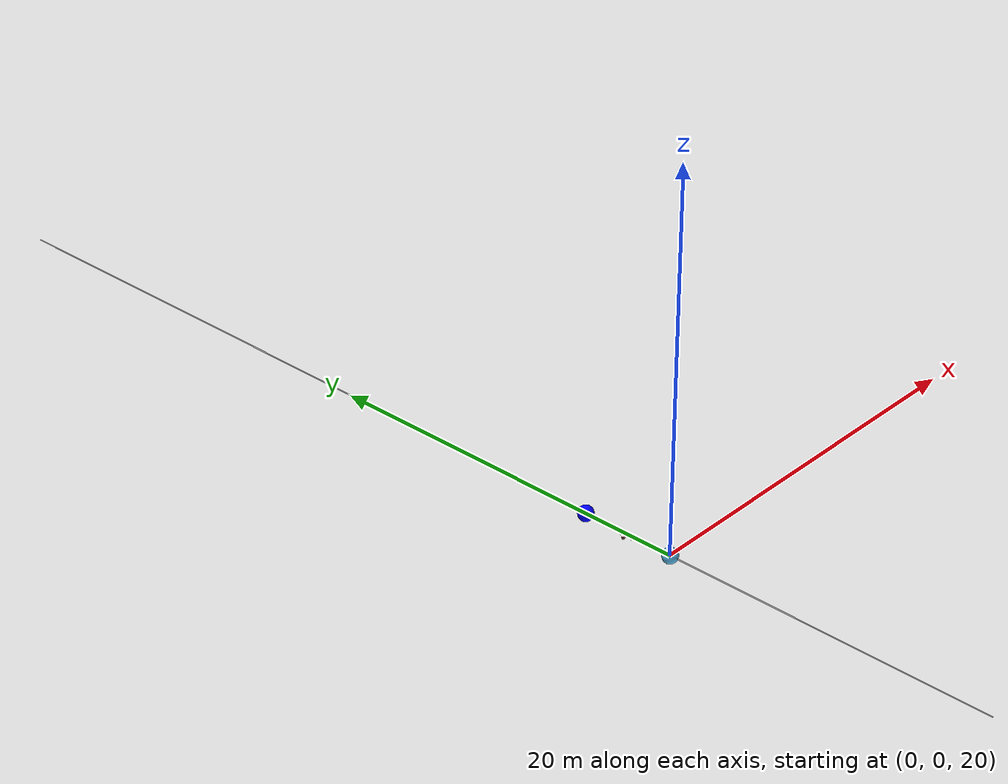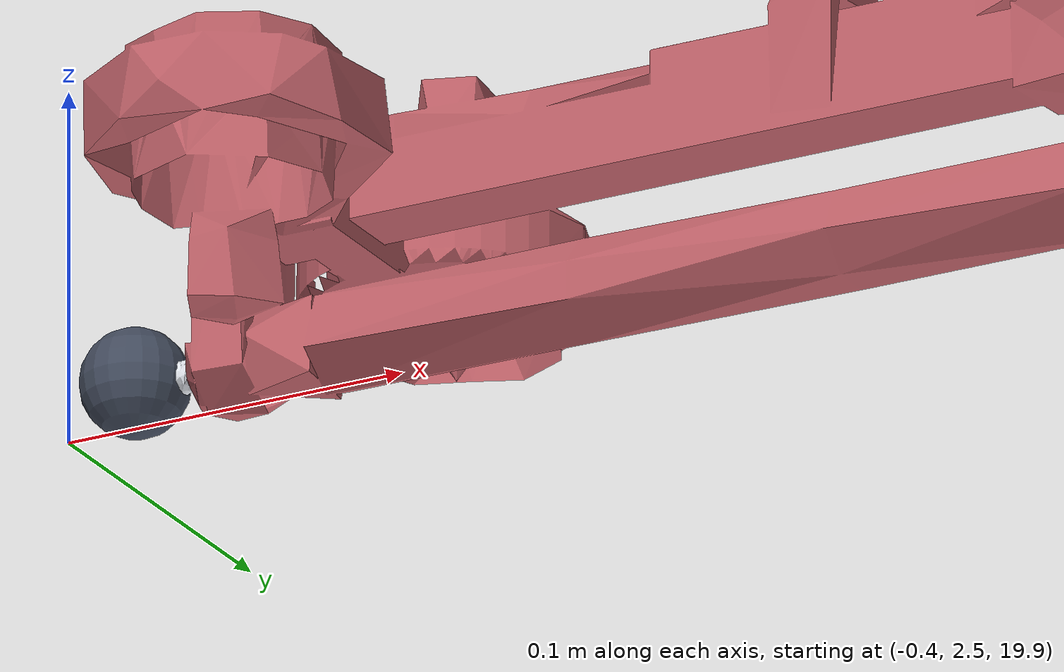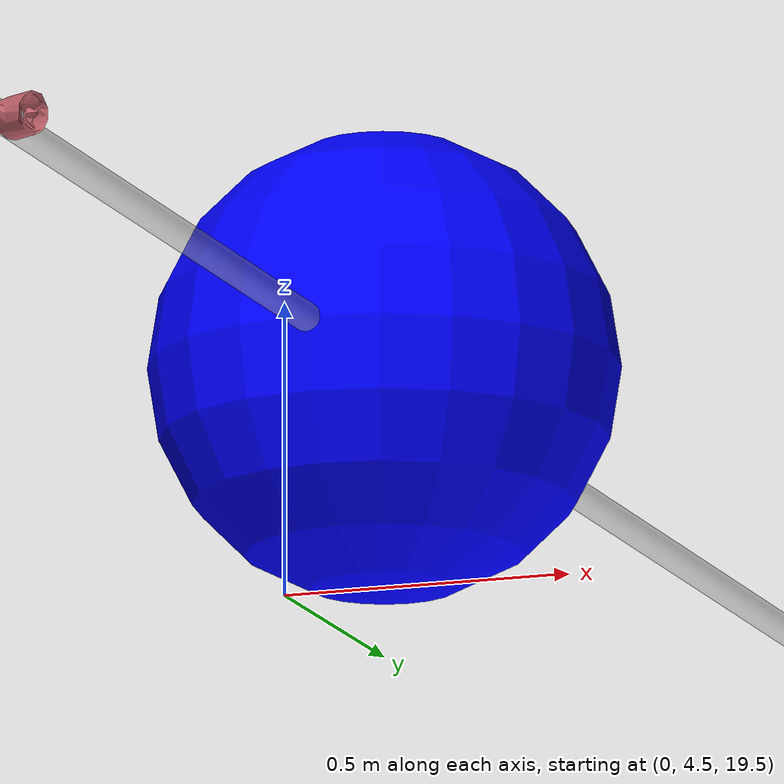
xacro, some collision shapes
<?xml version="1.0" ?>
<robot name="climbingrobot2" xmlns:xacro="http://ros.org/wiki/xacro">
  <!-- This file is based on: https://atlas.is.localnet/confluence/display/AMDW/Quadruped+URDF+Files -->

    <!--- new_gazebo_version should be false by default because pinocchio needs it!-->
    <xacro:arg name="robot_name" default="climbingrobot2"/>
    <xacro:arg name="new_gazebo_version" default="false"/>

   <xacro:arg name="anchorX" default="0."/>
   <xacro:arg name="anchorY" default="0."/>
   <xacro:arg name="anchorZ" default="20."/>

   <xacro:arg name="anchor2X" default="0."/>
   <xacro:arg name="anchor2Y" default="5."/>
   <xacro:arg name="anchor2Z" default="20."/>

   <xacro:arg name="hoist_distance" default="0.1"/>
   <xacro:arg name="hoist_base_distanceZ" default="0.05"/>

   <xacro:arg name="double_propeller" default="false"/>

    <xacro:include filename="$(find climbingrobot_description)/gazebo/gazebo.urdf.xacro">
        <xacro:arg name="task_period" value="$(arg task_period)"/>
	<xacro:arg name="robot_name" value="$(arg robot_name)"/>
    </xacro:include>

    <xacro:include filename="$(find climbingrobot_description)/urdf/climbingrobot2.transmission_real.xacro"/>

 <material name="Blue">
    <color rgba="${0/255} ${0/255} ${255/255} 1.0"/>
  </material>

    <link name="world"/>

 <!-- Anchor 1 link-->

   <joint name="anchor1_position" type="fixed">
        <origin rpy="0 0 0" xyz="$(arg anchorX) $(arg anchorY) $(arg anchorZ)"/>
        <parent link="world"/>
        <child link="anchor"/>
    </joint>

    <link name="anchor">
    <visual>
	<geometry>
         <sphere radius="0.4" />
	</geometry>
    </visual>

    <inertial>
      <origin rpy="0 0 0" xyz="0 0 0.0"/>
      <mass value="0.01"/>
      <inertia ixx="0.01" ixy="0.0" ixz="0.0" iyy="0.01" iyz="0.0" izz="0.01"/>
    </inertial>
  </link>

  <!-- Revolute pitch joint between the anchor1 and the wire -->
  <joint name="mountain_wire_pitch_l" type="revolute">
    <parent link="anchor"/>
    <child link="pre_wire1"/>
    <limit effort="1000" velocity="100.0" lower="-100" upper="100"/>
    <!-- joint rotates about -y axis -->
    <axis xyz="0 -1 0"/>
    <origin rpy="0 0 0" xyz="0.0 0.0 0.0"/>
    <!-- pybullet simulation parameters -->
    <dynamics damping="0.0" friction="0.0"/>
  </joint>

  <link name="pre_wire1">
    <visual>
      <origin rpy="0 0 0" xyz="0 0 0"/>
      <geometry>
        <mesh filename="package://climbingrobot_description/meshes/obj/cylinder.obj" scale="0.01 0.01 0.01"/>
      </geometry>
      <material name="grey">
        <color rgba=".7 .7 .7 .5"/>
      </material>
    </visual>
    <collision>
      <origin rpy="0 0 0" xyz="0 0 0.0"/>
      <geometry>
        <cylinder length="0.01" radius="0.01"/>
      </geometry>
    </collision>
    <inertial>
      <origin rpy="0 0 0" xyz="0 0 0.0"/>
      <mass value="0.01"/>
      <inertia ixx="0.0001" ixy="0.0" ixz="0.0" iyy="0.0001" iyz="0.0" izz="0.0001"/>
    </inertial>
  </link>

  <!-- Revolute roll joint between the mountain and the wire -->
  <joint name="mountain_wire_roll_l" type="revolute">
    <parent link="pre_wire1"/>
    <child link="wire"/>
    <limit effort="1000" velocity="100.0" lower="-100" upper="100"/>
    <!-- joint rotates about x axis -->
    <axis xyz="1 0 0"/>
    <origin rpy="1.57 0 0" xyz="0.0 0.0 0.0"/>
    <!-- pybullet simulation parameters -->
    <dynamics damping="0.0" friction="0.0"/>
  </joint>

  <link name="wire">
    <inertial>
      <origin rpy="0 0 0" xyz="0 0 0.0"/>
      <mass value="0.01"/>
      <inertia ixx="0.001" ixy="0.0" ixz="0.0" iyy="0.001" iyz="0.0" izz="0.001"/>
    </inertial>
  </link>

  <!-- Prismatic joint between the wire and the base -->
  <joint name="wire_base_prismatic_l" type="prismatic">
    <parent link="wire"/>
    <child link="pre-base1"/>
    <limit effort="1000" velocity="100.0" lower="-100" upper="100"/>
    <!-- joint translates on z axis -->
    <axis xyz="0 0 -1"/>
    <origin rpy="0 0 0" xyz="0.0 0.0 ${$(arg hoist_distance)/2 -$(arg anchor2Y)/2}"/>
    <!-- pybullet simulation parameters -->
    <dynamics damping="0.0" friction="0.0"/>
  </joint>

  <link name="pre-base1">
      <visual>
      <origin rpy="0 0 0" xyz="0 0 ${$(arg anchorZ)/2}"/>
     <geometry>
           <cylinder radius="0.025" length="$(arg anchorZ)"/> <!--this is the rope-->
      </geometry>
 	      <material name="grey">
 	        <color rgba=".7 .7 .7 .5"/>
 	      </material>
     </visual>
    <inertial>
      <origin rpy="0 0 0" xyz="0 0 0.0"/>
      <mass value="0.01"/>
      <inertia ixx="0.0001" ixy="0.0" ixz="0.0" iyy="0.0001" iyz="0.0" izz="0.0001"/>
    </inertial>
  </link>

  <!-- Revolute pitch joint between the wire and the base -->
  <joint name="wire_base_pitch_l" type="revolute">
    <parent link="pre-base1"/>
    <child link="pre-base2"/>
    <limit effort="1000" velocity="100.0" lower="-100" upper="100"/>
    <!-- joint rotates about y axis -->
    <axis xyz="0 1 0"/>
    <origin rpy="0 0 0" xyz="0.0 0.0 0.0"/>
    <!-- pybullet simulation parameters -->
    <dynamics damping="0.0" friction="0.0"/>
  </joint>

  <link name="pre-base2">
     <inertial>
      <origin rpy="0 0 0" xyz="0 0 0.0"/>
      <mass value="0.01"/>
      <inertia ixx="0.0001" ixy="0.0" ixz="0.0" iyy="0.0001" iyz="0.0" izz="0.0001"/>
    </inertial>
  </link>
  <!-- Revolute roll joint between the wire and the base -->
  <joint name="wire_base_roll_l" type="revolute">
    <parent link="pre-base2"/>
    <child link="pre-base3"/>
    <limit effort="1000" velocity="100.0" lower="-100" upper="100"/>
    <!-- joint rotates about x axis -->
    <axis xyz="1 0 0"/>
    <origin rpy="-1.57 0 0" xyz="0.0 0.0 0.0"/>
    <!-- pybullet simulation parameters -->
    <dynamics damping="0.0" friction="0.0"/>
  </joint>

  <link name="pre-base3">
    <inertial>
      <origin rpy="0 0 0" xyz="0 0 0.0"/>
      <mass value="0.01"/>
      <inertia ixx="0.0001" ixy="0.0" ixz="0.0" iyy="0.0001" iyz="0.0" izz="0.0001"/>
    </inertial>
  </link>
  <!-- Revolute yaw joint between the wire and the base -->
  <joint name="wire_base_yaw_l" type="revolute">
    <parent link="pre-base3"/>
    <child link="base_link"/>
    <limit effort="1000" velocity="100.0" lower="-100" upper="100"/>
    <!-- joint rotates about z axis -->
    <axis xyz="0 0 1"/>
    <origin rpy="0 0 0" xyz="0.0 ${$(arg hoist_distance)/2} -$(arg hoist_base_distanceZ)"/>
    <!-- pybullet simulation parameters -->
    <dynamics damping="0.0" friction="0.0"/>
  </joint>

  <!-- Anchor 2   -->

   <joint name="anchor2_position" type="fixed">
        <origin rpy="0 0 0" xyz="0 ${$(arg anchor2Y)-$(arg anchorY)} 0"/>
        <parent link="anchor"/>
        <child link="anchor_2"/>
    </joint>

    <link name="anchor_2">
	    <visual>
		<geometry>
		 <sphere radius="0.4" />
		</geometry>
		<material name="Blue"/><!--rviz"/-->
	    </visual>

	    <inertial>
	      <origin rpy="0 0 0" xyz="0 0 0.0"/>
	      <mass value="0.01"/>
	      <inertia ixx="0.01" ixy="0.0" ixz="0.0" iyy="0.01" iyz="0.0" izz="0.01"/>
	    </inertial>
    </link>

  <!-- Revolute pitch joint between the mountain and the wire -->
  <joint name="mountain_wire_pitch_r" type="revolute">
    <parent link="anchor_2"/>
    <child link="pre_wire1_2"/>
    <limit effort="1000" velocity="100.0" lower="-100" upper="100"/>
    <!-- joint rotates about -y axis -->
    <axis xyz="0 -1 0"/>
    <origin rpy="-${pi/2}  0 0" xyz="0.0 0.0 0.0"/>
    <!-- pybullet simulation parameters -->
    <dynamics damping="0.0" friction="0.0"/>
  </joint>

  <link name="pre_wire1_2">
    <visual>
      <origin rpy="0 0 0" xyz="0 0 0"/>
      <geometry>
        <mesh filename="package://climbingrobot_description/meshes/obj/cylinder.obj" scale="0.01 0.01 0.01"/>
      </geometry>
      <material name="grey">
        <color rgba=".7 .7 .7 .5"/>
      </material>
    </visual>
    <collision>
      <origin rpy="0 0 0" xyz="0 0 0.0"/>
      <geometry>
        <cylinder length="0.01" radius="0.01"/>
      </geometry>
    </collision>
    <inertial>
      <origin rpy="0 0 0" xyz="0 0 0.0"/>
      <mass value="0.01"/>
      <inertia ixx="0.0001" ixy="0.0" ixz="0.0" iyy="0.0001" iyz="0.0" izz="0.0001"/>
    </inertial>
  </link>

  <!-- Revolute roll joint between the mountain and the wire -->
  <joint name="mountain_wire_roll_r" type="revolute">
    <parent link="pre_wire1_2"/>
    <child link="wire_2"/>
    <limit effort="1000" velocity="100.0" lower="-100" upper="100"/>
    <!-- joint rotates about x axis -->
    <axis xyz="1 0 0"/>
    <origin rpy="0 0 0" xyz="0.0 0.0 0.0"/>
    <!-- pybullet simulation parameters -->
    <dynamics damping="0.0" friction="0.0"/>
  </joint>

  <link name="wire_2">
    <inertial>
      <origin rpy="0 0 0" xyz="0 0 0.0"/>
      <mass value="0.01"/>
      <inertia ixx="0.001" ixy="0.0" ixz="0.0" iyy="0.001" iyz="0.0" izz="0.001"/>
    </inertial>
  </link>

  <!-- Prismatic joint between the wire and the base -->
  <joint name="wire_base_prismatic_r" type="prismatic">
    <parent link="wire_2"/>
    <child link="pre-base1_2"/>
    <limit effort="1000" velocity="100.0" lower="-100" upper="100"/>
    <!-- joint translates on x axis -->
    <axis xyz="0 0 -1"/>
    <origin rpy="0 0 0" xyz="0.0 0.0  ${$(arg hoist_distance)/2 -$(arg anchor2Y)/2}"/>
    <!-- pybullet simulation parameters -->
    <dynamics damping="0.0" friction="0.0"/>
  </joint>

  <link name="pre-base1_2">
      <visual>
       	      <origin rpy="0 0 0" xyz="0 0 $(arg anchorZ)"/>
 	      <geometry>
 	        <cylinder radius="0.025" length="${$(arg anchorZ)*2}"/> <!--this is the rope-->
 	      </geometry>
 	      <material name="grey">
 	        <color rgba=".7 .7 .7 .5"/>
 	      </material>
     </visual>
    <inertial>
      <origin rpy="0 0 0" xyz="0 0 0.0"/>
      <mass value="0.01"/>
      <inertia ixx="0.0001" ixy="0.0" ixz="0.0" iyy="0.0001" iyz="0.0" izz="0.0001"/>
    </inertial>
  </link>

  <!-- Revolute pitch joint between the wire and the base -->
  <joint name="wire_base_pitch_r" type="revolute">
    <parent link="pre-base1_2"/>
    <child link="pre-base2_2"/>
    <limit effort="1000" velocity="100.0" lower="-100" upper="100"/>
    <!-- joint rotates about y axis -->
    <axis xyz="0 1 0"/>
    <origin rpy="0 0 0" xyz="0.0 0.0 0.0"/>
    <!-- pybullet simulation parameters -->
    <dynamics damping="0.0" friction="0.0"/>
  </joint>

  <link name="pre-base2_2">
     <inertial>
      <origin rpy="0 0 0" xyz="0 0 0.0"/>
      <mass value="0.01"/>
      <inertia ixx="0.0001" ixy="0.0" ixz="0.0" iyy="0.0001" iyz="0.0" izz="0.0001"/>
    </inertial>
  </link>
  <!-- Revolute roll joint between the wire and the base -->
  <joint name="wire_base_roll_r" type="revolute">
    <parent link="pre-base2_2"/>
    <child link="pre-base3_2"/>
    <limit effort="1000" velocity="100.0" lower="-100" upper="100"/>
    <!-- joint rotates about x axis -->
    <axis xyz="1 0 0"/>
    <origin rpy="1.57 0 0" xyz="0.0 0.0 0.0"/>
    <!-- pybullet simulation parameters -->
    <dynamics damping="0.0" friction="0.0"/>
  </joint>

  <link name="pre-base3_2">
    <inertial>
      <origin rpy="0 0 0" xyz="0 0 0.0"/>
      <mass value="0.01"/>
      <inertia ixx="0.0001" ixy="0.0" ixz="0.0" iyy="0.0001" iyz="0.0" izz="0.0001"/>
    </inertial>
  </link>

  <joint name="wire_base_yaw_r" type="revolute">
    <parent link="pre-base3_2"/>
    <child link="fake_link_end_of_right_rope"/>
    <limit effort="1000" velocity="100.0" lower="-100" upper="100"/>
    <!-- joint rotates about x axis -->
    <axis xyz="0 0 1"/>
     <origin  xyz="0 ${-$(arg hoist_distance)/2} ${-$(arg hoist_base_distanceZ)}" rpy="0 0 0" />
    <!-- pybullet simulation parameters -->
    <dynamics damping="0.0" friction="0.0"/>
  </joint>

  <link name="fake_link_end_of_right_rope">
    <inertial>
      <origin rpy="0 0 0" xyz="0 0 0.0"/>
      <mass value="0.01"/>
      <inertia ixx="0.0001" ixy="0.0" ixz="0.0" iyy="0.0001" iyz="0.0" izz="0.0001"/>
    </inertial>
  </link>

 <!-- closing the loop for gazebo not used by pinocchio -->
 <gazebo>
	  <joint name="fixed_joint" type="fixed">
		 <pose>0 0 0 0 0 0 0</pose>
		 <parent>fake_link_end_of_right_rope</parent>
		 <child>base_link</child>
	  </joint>
 </gazebo>

  <link name="base_link">
    <!-- BASE LINK INERTIAL -->
    <inertial>
      <origin rpy="0 0 0" xyz="0 0 0"/>
      <mass value="3.47"/>
      <!-- The base is extremely symmetrical. -->
      <inertia ixx="0.5" ixy="0.0" ixz="0.0" iyy="0.5" iyz="0.0" izz="0.5"/>
    </inertial>
    <!-- BASE LINK VISUAL -->
    <visual>
      <origin rpy="-${pi/2} 0 0" xyz="0 0 0"/>
      <geometry>
      <!--mesh filename="package://climbingrobot_description/meshes/obj/with_foot/solo_body.obj" scale="1 1 1"/-->
         <mesh filename="package://climbingrobot_description/meshes/alpine/alpine_body.stl" scale="1 1 1"/>
      </geometry>
      <material name="red">
        <color rgba="0.749 0.380 0.410 1.0"/>
      </material>
    </visual>
    <!-- BASE LINK COLLISION -->
    <collision>
      <origin rpy="-${pi/2} 0 0" xyz="0 0 0"/>
      <geometry>
        <!--mesh filename="package://climbingrobot_description/meshes/obj/with_foot/solo_body.obj" scale="1 1 1"/-->
         <mesh filename="package://climbingrobot_description/meshes/alpine/alpine_body.stl" scale="1 1 1"/>
      </geometry>
    </collision>
    <!-- Bullet specific paramters -->
    <contact>
      <lateral_friction value="1.0"/>
      <restitution value="0.5"/>
    </contact>
  </link>
  <!-- END BASE LINK -->

  <!-- KFE: Joint between the upper leg and the lower leg -->
  <joint name="knee" type="prismatic">
    <parent link="base_link"/>
    <child link="lower_link"/>
    <limit effort="1000" velocity="100.0" lower="-100" upper="100"/>
    <!-- joints rotates around the y-axis -->
    <axis xyz="1 0 0 "/>
    <origin rpy="0 0 0" xyz="0 0.0 -0.0"/>
    <!-- pybullet simulation parameters -->
    <dynamics damping="0.0" friction="0.0"/>
  </joint>
  <link name="lower_link">
    <!-- Left lower leg inertia -->
    <inertial>
      <origin rpy="0 0 0" xyz="0.0 0.0 -0.09"/>
      <mass value="0.5"/>
      <inertia ixx="0.01" ixy="0.0" ixz="0.0" iyy="0.01" iyz="0.00000305" izz="0.01"/>
    </inertial>
    <!-- LOWER LEG LINK VISUAL -->
    <visual>
      <origin rpy="0 0 0" xyz="0 0 0"/>
      <geometry>
        <!--mesh filename="package://climbingrobot_description/meshes/obj/with_foot/solo_lower_leg_left_side.obj" scale="1 1 1.5"/-->
         <mesh filename="package://climbingrobot_description/meshes/alpine/alpine_body_rod.stl" scale="1 1 1"/>
      </geometry>
        <material name="white">
        	<color rgba="0.898 0.913 0.941 1.0"/>
    	</material>
    </visual>
    <!-- LOWER LEG LINK COLLISION -->
    <!-- Bullet specific paramters -->
    <contact>
      <lateral_friction value="1.0"/>
      <restitution value="0.5"/>
    </contact>
  </link>
  <!-- END LOWER LEG LINK -->
  <!-- KFE: Joint between the upper leg and the lower leg -->
  <joint name="ankle" type="fixed">
    <parent link="lower_link"/>
    <child link="foot"/>
    <origin rpy="0 0 0" xyz="-0.38 0.0 -0.035 "/>
    <!-- Limits (usefull?) -->
    <limit effort="1000" lower="-10" upper="10" velocity="1000"/>
    <!-- pybullet simulation parameters -->
    <dynamics damping="0.0" friction="0.0"/>
  </joint>
  <link name="foot">
    <!-- FOOT INERTIAL -->
    <!-- This link is symmetrical left or right -->
    <inertial>
      <origin rpy="0 0 0" xyz="0 0 0.00035767"/>
      <mass value="0.00693606"/>
      <inertia ixx="0.00000057" ixy="0.0" ixz="0.0" iyy="0.00000084" iyz="0.0" izz="0.00000053"/>
    </inertial>
    <!-- FOOT VISUAL -->
    <visual>
      <origin rpy="0 0 0" xyz="0 0 0"/>
      <geometry>
        <sphere radius="0.015" />
      </geometry>
	<material name="black">
		<color rgba="0.263 0.298 0.369 1"/>
	</material>
    </visual>
    <!-- FOOT COLLISION -->
    <collision>
      <origin rpy="0 0 0" xyz="0 0 0"/>
      <geometry>
        <sphere radius="0.015" />
      </geometry>
      <material name="grey">
        <color rgba="0.7 0.7 0.7 0.5"/>
      </material>
    </collision>

  </link>
  <!-- END LOWER LEG LINK -->
  <!-- Joint between the base and the ${prefix} upper leg -->

   <xacro:unless value="$(arg double_propeller)">
   	<xacro:include filename="$(find climbingrobot_description)/urdf/propellers.urdf.xacro"/>
   </xacro:unless>
   <xacro:if value="$(arg double_propeller)">
         <xacro:include filename="$(find climbingrobot_description)/urdf/propellers_couple.urdf.xacro"/>
   </xacro:if>

   <xacro:include filename="$(find climbingrobot_description)/urdf/gazebo.urdf.xacro"/>

   <xacro:climbingrobot_transmission/>

</robot>

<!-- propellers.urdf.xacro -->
<robot xmlns:xacro="http://ros.org/wiki/xacro">

  <joint name="propeller_location" type="fixed">
    <parent link="base_link"/>
    <child link="propeller"/>
    <origin rpy="0 -1.57 0" xyz="0.07 0  0.025"/>
  </joint>

  <link name="propeller">
    <visual>
      <origin rpy="0 0 0" xyz="0 0 0"/>
      <geometry>
        <mesh filename="package://climbingrobot_description/meshes/propeller_simple.stl" scale="0.002 0.002 0.002"/>
      </geometry>
      <material name="blue">
        <color rgba="0 1 0 1.0"/>
      </material>
    </visual>
  </link>

</robot>
